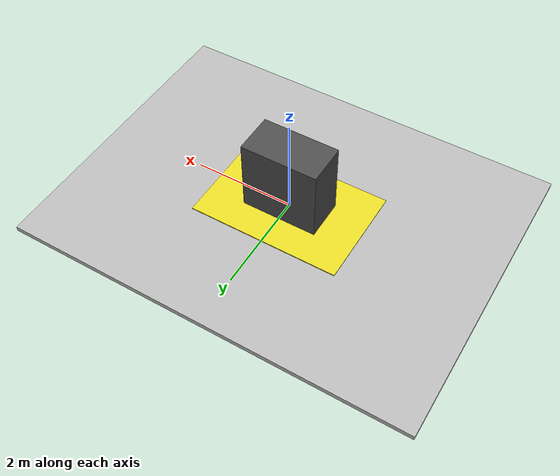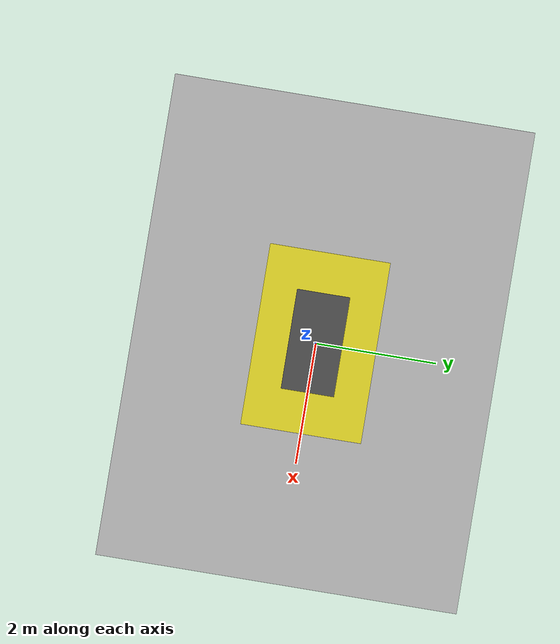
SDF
<?xml version="1.0" ?>
<sdf version="1.6">
  <world name="ur_workspace">

    <include>
      <uri>model://sun</uri>
    </include>

    <!-- Suelo con textura de concreto -->
    <model name="concrete_floor">
      <static>true</static>
      <pose>0 0 -0.05 0 0 0</pose>
      <link name="concrete_floor_link">
        <collision name="floor_collision">
          <geometry>
            <box>
              <size>8 6 0.1</size>
            </box>
          </geometry>
        </collision>
        <visual name="floor_visual">
          <geometry>
            <box>
              <size>8 6 0.1</size>
            </box>
          </geometry>
          <material>
            <script>
              <uri>file://media/materials/scripts/gazebo.material</uri>
              <name>Gazebo/Concrete</name>
            </script>
          </material>
        </visual>
      </link>
    </model>

    <!-- Iluminación de taller -->
    <light type="point" name="ceiling_light_1">
      <pose>0 0 4 0 0 0</pose>
      <diffuse>1.0 1.0 0.95 1</diffuse>
      <specular>0.5 0.5 0.5 1</specular>
      <attenuation>
        <range>8</range>
        <constant>0.5</constant>
        <linear>0.2</linear>
        <quadratic>0.05</quadratic>
      </attenuation>
      <cast_shadows>true</cast_shadows>
    </light>

    <light type="point" name="ceiling_light_2">
      <pose>2 2 4 0 0 0</pose>
      <diffuse>1.0 1.0 0.95 1</diffuse>
      <specular>0.5 0.5 0.5 1</specular>
      <attenuation>
        <range>8</range>
        <constant>0.5</constant>
        <linear>0.2</linear>
        <quadratic>0.05</quadratic>
      </attenuation>
      <cast_shadows>true</cast_shadows>
    </light>

    <!-- Área de trabajo delimitada -->
    <model name="work_area">
      <static>true</static>
      <pose>0 0 0.01 0 0 0</pose>
      <link name="work_area_link">
        <visual name="area_visual">
          <geometry>
            <box>
              <size>3 2 0.02</size>
            </box>
          </geometry>
          <material>
            <script>
              <uri>file://media/materials/scripts/gazebo.material</uri>
              <name>Gazebo/Yellow</name>
            </script>
            <ambient>1 1 0 0.3</ambient>
          </material>
        </visual>
      </link>
    </model>

    <!-- Mesa de trabajo -->
    <model name="work_table">
      <static>true</static>
      <pose>0 0 0.75 0 0 0</pose>
      <link name="table_link">
        <collision name="table_collision">
          <geometry>
            <box>
              <size>1.5 0.8 1.5</size>
            </box>
          </geometry>
        </collision>
        <visual name="table_visual">
          <geometry>
            <box>
              <size>1.5 0.8 1.5</size>
            </box>
          </geometry>
          <material>
            <script>
              <uri>file://media/materials/scripts/gazebo.material</uri>
              <name>Gazebo/DarkGrey</name>
            </script>
          </material>
        </visual>
      </link>
    </model>

    <!-- Objetos para manipulación -->
    <model name="test_cube">
      <pose>0.5 0 1.0 0 0 0</pose>
      <link name="cube_link">
        <collision name="cube_collision">
          <geometry>
            <box>
              <size>0.05 0.05 0.05</size>
            </box>
          </geometry>
        </collision>
        <visual name="cube_visual">
          <geometry>
            <box>
              <size>0.05 0.05 0.05</size>
            </box>
          </geometry>
          <material>
            <script>
              <uri>file://media/materials/scripts/gazebo.material</uri>
              <name>Gazebo/Red</name>
            </script>
          </material>
        </visual>
        <inertial>
          <mass>0.1</mass>
          <inertia>
            <ixx>0.0001</ixx>
            <ixy>0</ixy>
            <ixz>0</ixz>
            <iyy>0.0001</iyy>
            <iyz>0</iyz>
            <izz>0.0001</izz>
          </inertia>
        </inertial>
      </link>
    </model>

    <!-- Física optimizada para robótica -->
    <physics name="robotics_physics" default="0" type="ode">
      <max_step_size>0.002</max_step_size>
      <real_time_factor>1.0</real_time_factor>
      <real_time_update_rate>500</real_time_update_rate>
      <gravity>0 0 -9.81</gravity>
      <ode>
        <solver>
          <type>quick</type>
          <iters>50</iters>
          <sor>1.2</sor>
          <use_dynamic_moi_rescaling>true</use_dynamic_moi_rescaling>
          <friction_model>pyramid_model</friction_model>
        </solver>
        <constraints>
          <cfm>0.0</cfm>
          <erp>0.2</erp>
          <contact_max_correcting_vel>10.0</contact_max_correcting_vel>
          <contact_surface_layer>0.001</contact_surface_layer>
        </constraints>
      </ode>
    </physics>

    <!-- Configuración de escena -->
    <scene>
      <ambient>0.5 0.5 0.5 1</ambient>
      <background>0.9 0.9 0.95 1</background>
      <shadows>true</shadows>
      <grid>true</grid>
      <grid>10</grid>
      <origin_visual>true</origin_visual>
    </scene>

    <!-- Plugin para GUI de Gazebo -->
    <gui fullscreen="0">
      <camera name="user_camera">
        <pose>1.5 -1.5 1.5 0 0.5 2.35</pose>
        <view_controller>orbit</view_controller>
        <projection_type>perspective</projection_type>
      </camera>
    </gui>

  </world>
</sdf>
